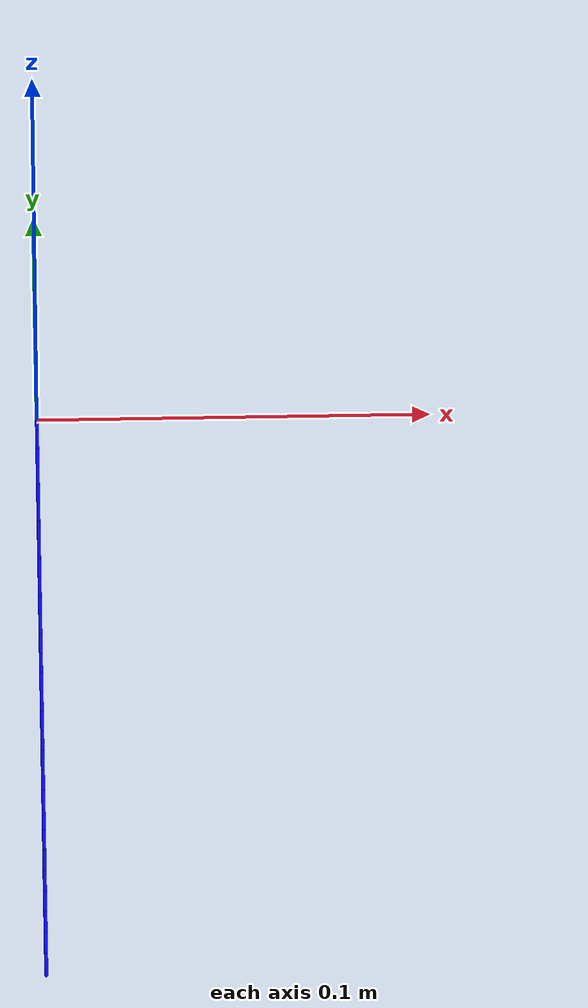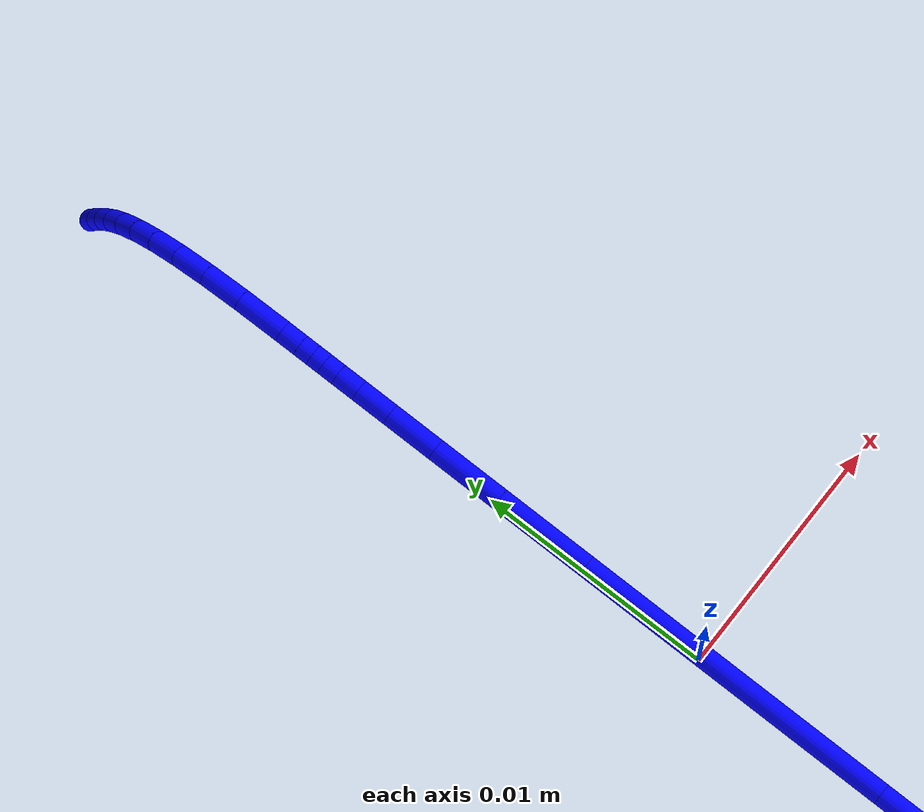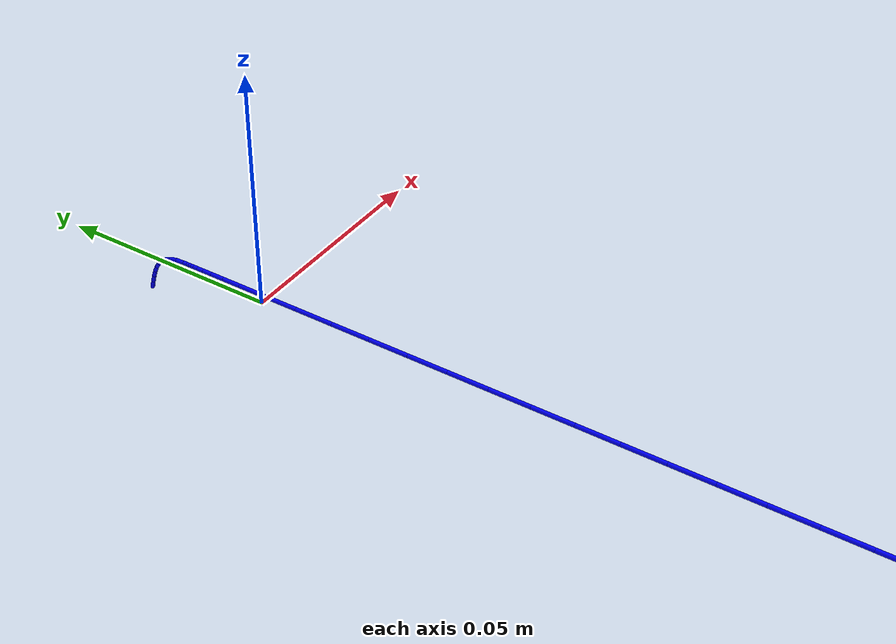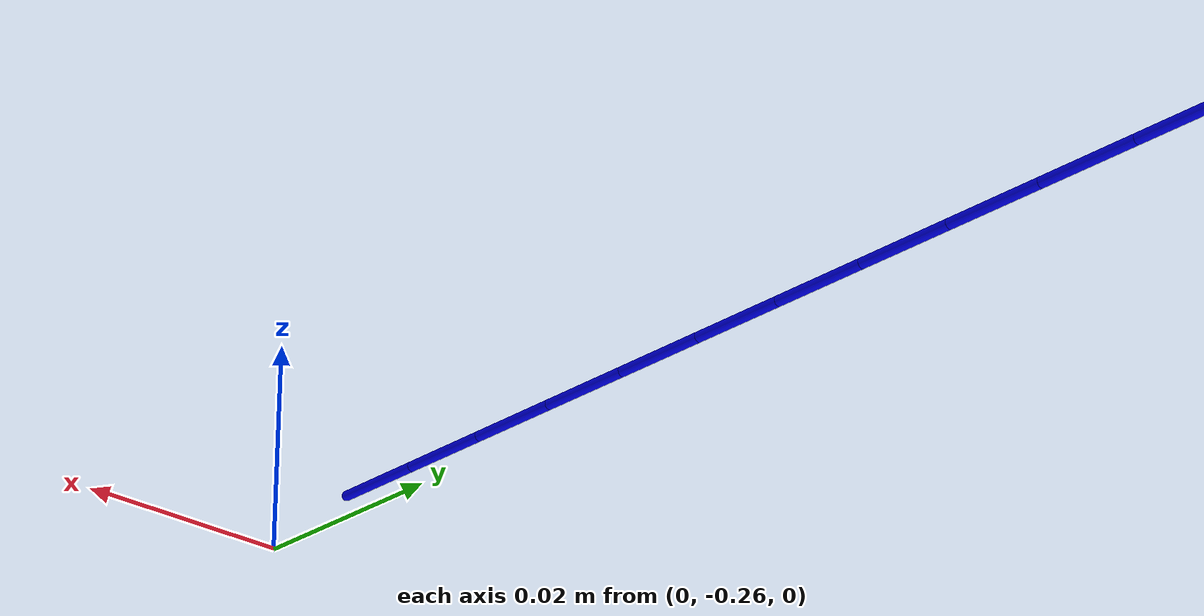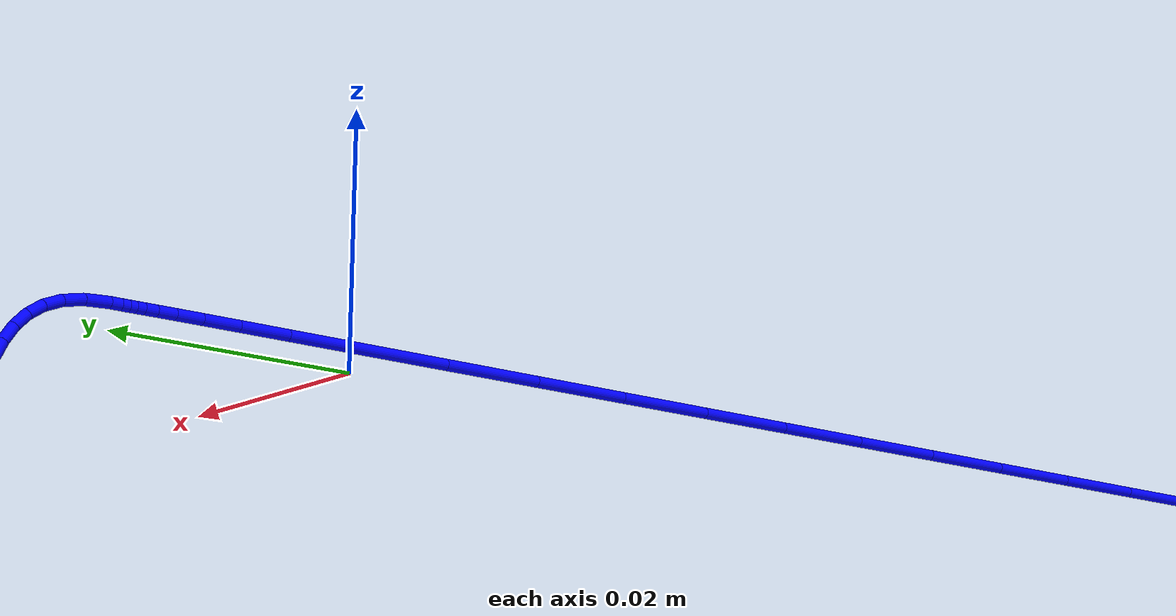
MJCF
<mujoco model="guidewire">
  <compiler angle="radian" />

  <visual>
    <global elevation="-30" />
  </visual>

  <default>
    <default class="guidewire">
      <geom condim="1" rgba="0.8 0.2 0.1 1" />
    </default>
    <default class="tips">
      <geom condim="1" rgba="0.8 0.2 0.1 1" />
    </default>
  </default>

  <extension>
    <plugin plugin="mujoco.pid">
      <instance name="slider-pid">
        <config key="kp" value="0.1"></config>
        <config key="ki" value="0.1"></config>
        <config key="kd" value="0.1"></config>
        <config key="imax" value="0.001"></config>
        <config key="slewmax" value="0.2"></config>
      </instance>
      <instance name="rotator-pid">
        <config key="kp" value="1"></config>
        <config key="ki" value="1"></config>
        <config key="kd" value="0.1"></config>
        <config key="imax" value="1"></config>
        <config key="slewmax" value="2"></config>
      </instance>
    </plugin>
    <plugin plugin="mujoco.elasticity.cable">
      <instance name="compositeguidewire">
        <config key="bend" value="1e9"></config>
        <config key="flat" value="true"></config>
        <config key="vmax" value="0.0004"></config>
      </instance>
      <instance name="compositetip">
        <config key="bend" value="5e7"></config>
        <config key="vmax" value="0.0004"></config>
      </instance>
    </plugin>
  </extension>

  <custom>
    <text name="composite_guidewire" data="rope_guidewire" />
    <text name="composite_tip" data="rope_tip" />
  </custom>

  <worldbody>
    <frame>
      <body name="guidewire" childclass="guidewire" pos="0 -0.25 0.002" quat="0.707107 0 0 0.707107">
        <joint name="slider" pos="0 0 0" axis="1 0 0" type="slide" limited="true" range="-0.1 0.1"
          damping="0.2" />
        <joint name="rotator" pos="0 0 0" axis="1 0 0" limited="false" range="100 100" damping="0.2" />
        <body name="guidewireB_first">
          <geom name="guidewireG0" size="0.000445 0.00431034" pos="0.00431034 0 0"
            quat="0.707107 0 -0.707107 0" type="capsule" condim="3" rgba="0 0 1 1" />
          <site name="guidewireS_first" pos="0 0 0" group="3" />
          <plugin instance="compositeguidewire" />
          <body name="guidewireB_1" pos="0.00862069 0 0">
            <joint name="guidewireJ_1" pos="0 0 0" type="ball" group="3" actuatorfrclimited="false"
              damping="0.001" />
            <geom name="guidewireG1" size="0.000445 0.00431034" pos="0.00431034 0 0"
              quat="0.707107 0 -0.707107 0" type="capsule" condim="3" rgba="0 0 1 1" />
            <plugin instance="compositeguidewire" />
            <body name="guidewireB_2" pos="0.00862069 0 0">
              <joint name="guidewireJ_2" pos="0 0 0" type="ball" group="3"
                actuatorfrclimited="false" damping="0.001" />
              <geom name="guidewireG2" size="0.000445 0.00431035" pos="0.00431035 0 0"
                quat="0.707107 0 -0.707107 0" type="capsule" condim="3" rgba="0 0 1 1" />
              <plugin instance="compositeguidewire" />
              <body name="guidewireB_3" pos="0.00862069 0 0">
                <joint name="guidewireJ_3" pos="0 0 0" type="ball" group="3"
                  actuatorfrclimited="false" damping="0.001" />
                <geom name="guidewireG3" size="0.000445 0.00431034" pos="0.00431034 0 0"
                  quat="0.707107 0 -0.707107 0" type="capsule" condim="3" rgba="0 0 1 1" />
                <plugin instance="compositeguidewire" />
                <body name="guidewireB_4" pos="0.00862069 0 0">
                  <joint name="guidewireJ_4" pos="0 0 0" type="ball" group="3"
                    actuatorfrclimited="false" damping="0.001" />
                  <geom name="guidewireG4" size="0.000445 0.00431035" pos="0.00431035 0 0"
                    quat="0.707107 0 -0.707107 0" type="capsule" condim="3" rgba="0 0 1 1" />
                  <plugin instance="compositeguidewire" />
                  <body name="guidewireB_5" pos="0.00862069 0 0">
                    <joint name="guidewireJ_5" pos="0 0 0" type="ball" group="3"
                      actuatorfrclimited="false" damping="0.001" />
                    <geom name="guidewireG5" size="0.000445 0.00431035" pos="0.00431035 0 0"
                      quat="0.707107 0 -0.707107 0" type="capsule" condim="3" rgba="0 0 1 1" />
                    <plugin instance="compositeguidewire" />
                    <body name="guidewireB_6" pos="0.00862069 0 0">
                      <joint name="guidewireJ_6" pos="0 0 0" type="ball" group="3"
                        actuatorfrclimited="false" damping="0.001" />
                      <geom name="guidewireG6" size="0.000445 0.00431034" pos="0.00431034 0 0"
                        quat="0.707107 0 -0.707107 0" type="capsule" condim="3" rgba="0 0 1 1" />
                      <plugin instance="compositeguidewire" />
                      <body name="guidewireB_7" pos="0.00862069 0 0">
                        <joint name="guidewireJ_7" pos="0 0 0" type="ball" group="3"
                          actuatorfrclimited="false" damping="0.001" />
                        <geom name="guidewireG7" size="0.000445 0.00431035" pos="0.00431035 0 0"
                          quat="0.707107 0 -0.707107 0" type="capsule" condim="3" rgba="0 0 1 1" />
                        <plugin instance="compositeguidewire" />
                        <body name="guidewireB_8" pos="0.00862069 0 0">
                          <joint name="guidewireJ_8" pos="0 0 0" type="ball" group="3"
                            actuatorfrclimited="false" damping="0.001" />
                          <geom name="guidewireG8" size="0.000445 0.00431034" pos="0.00431034 0 0"
                            quat="0.707107 0 -0.707107 0" type="capsule" condim="3" rgba="0 0 1 1" />
                          <plugin instance="compositeguidewire" />
                          <body name="guidewireB_9" pos="0.00862069 0 0">
                            <joint name="guidewireJ_9" pos="0 0 0" type="ball" group="3"
                              actuatorfrclimited="false" damping="0.001" />
                            <geom name="guidewireG9" size="0.000445 0.00431035" pos="0.00431035 0 0"
                              quat="0.707107 0 -0.707107 0" type="capsule" condim="3" rgba="0 0 1 1" />
                            <plugin instance="compositeguidewire" />
                            <body name="guidewireB_10" pos="0.00862069 0 0">
                              <joint name="guidewireJ_10" pos="0 0 0" type="ball" group="3"
                                actuatorfrclimited="false" damping="0.001" />
                              <geom name="guidewireG10" size="0.000445 0.00431034"
                                pos="0.00431034 0 0" quat="0.707107 0 -0.707107 0" type="capsule"
                                condim="3" rgba="0 0 1 1" />
                              <plugin instance="compositeguidewire" />
                              <body name="guidewireB_11" pos="0.00862069 0 0">
                                <joint name="guidewireJ_11" pos="0 0 0" type="ball" group="3"
                                  actuatorfrclimited="false" damping="0.001" />
                                <geom name="guidewireG11" size="0.000445 0.00431035"
                                  pos="0.00431035 0 0" quat="0.707107 0 -0.707107 0" type="capsule"
                                  condim="3" rgba="0 0 1 1" />
                                <plugin instance="compositeguidewire" />
                                <body name="guidewireB_12" pos="0.00862069 0 0">
                                  <joint name="guidewireJ_12" pos="0 0 0" type="ball" group="3"
                                    actuatorfrclimited="false" damping="0.001" />
                                  <geom name="guidewireG12" size="0.000445 0.00431034"
                                    pos="0.00431034 0 0" quat="0.707107 0 -0.707107 0"
                                    type="capsule" condim="3" rgba="0 0 1 1" />
                                  <plugin instance="compositeguidewire" />
                                  <body name="guidewireB_13" pos="0.00862069 0 0">
                                    <joint name="guidewireJ_13" pos="0 0 0" type="ball" group="3"
                                      actuatorfrclimited="false" damping="0.001" />
                                    <geom name="guidewireG13" size="0.000445 0.00431034"
                                      pos="0.00431034 0 0" quat="0.707107 0 -0.707107 0"
                                      type="capsule" condim="3" rgba="0 0 1 1" />
                                    <plugin instance="compositeguidewire" />
                                    <body name="guidewireB_14" pos="0.00862069 0 0">
                                      <joint name="guidewireJ_14" pos="0 0 0" type="ball" group="3"
                                        actuatorfrclimited="false" damping="0.001" />
                                      <geom name="guidewireG14" size="0.000445 0.00431034"
                                        pos="0.00431034 0 0" quat="0.707107 0 -0.707107 0"
                                        type="capsule" condim="3" rgba="0 0 1 1" />
                                      <plugin instance="compositeguidewire" />
                                      <body name="guidewireB_15" pos="0.00862069 0 0">
                                        <joint name="guidewireJ_15" pos="0 0 0" type="ball"
                                          group="3" actuatorfrclimited="false" damping="0.001" />
                                        <geom name="guidewireG15" size="0.000445 0.00431035"
                                          pos="0.00431035 0 0" quat="0.707107 0 -0.707107 0"
                                          type="capsule" condim="3" rgba="0 0 1 1" />
                                        <plugin instance="compositeguidewire" />
                                        <body name="guidewireB_16" pos="0.00862069 0 0">
                                          <joint name="guidewireJ_16" pos="0 0 0" type="ball"
                                            group="3" actuatorfrclimited="false" damping="0.001" />
                                          <geom name="guidewireG16" size="0.000445 0.00431035"
                                            pos="0.00431035 0 0" quat="0.707107 0 -0.707107 0"
                                            type="capsule" condim="3" rgba="0 0 1 1" />
                                          <plugin instance="compositeguidewire" />
                                          <body name="guidewireB_17" pos="0.00862069 0 0">
                                            <joint name="guidewireJ_17" pos="0 0 0" type="ball"
                                              group="3" actuatorfrclimited="false" damping="0.001" />
                                            <geom name="guidewireG17" size="0.000445 0.00431034"
                                              pos="0.00431034 0 0" quat="0.707107 0 -0.707107 0"
                                              type="capsule" condim="3" rgba="0 0 1 1" />
                                            <plugin instance="compositeguidewire" />
                                            <body name="guidewireB_18" pos="0.00862068 0 0">
                                              <joint name="guidewireJ_18" pos="0 0 0" type="ball"
                                                group="3" actuatorfrclimited="false" damping="0.001" />
                                              <geom name="guidewireG18" size="0.000445 0.00431035"
                                                pos="0.00431035 0 0" quat="0.707107 0 -0.707107 0"
                                                type="capsule" condim="3" rgba="0 0 1 1" />
                                              <plugin instance="compositeguidewire" />
                                              <body name="guidewireB_19" pos="0.00862069 0 0">
                                                <joint name="guidewireJ_19" pos="0 0 0" type="ball"
                                                  group="3" actuatorfrclimited="false"
                                                  damping="0.001" />
                                                <geom name="guidewireG19" size="0.000445 0.00431035"
                                                  pos="0.00431035 0 0" quat="0.707107 0 -0.707107 0"
                                                  type="capsule" condim="3" rgba="0 0 1 1" />
                                                <plugin instance="compositeguidewire" />
                                                <body name="guidewireB_20" pos="0.00862069 0 0">
                                                  <joint name="guidewireJ_20" pos="0 0 0"
                                                    type="ball" group="3" actuatorfrclimited="false"
                                                    damping="0.001" />
                                                  <geom name="guidewireG20"
                                                    size="0.000445 0.00431034" pos="0.00431034 0 0"
                                                    quat="0.707107 0 -0.707107 0" type="capsule"
                                                    condim="3" rgba="0 0 1 1" />
                                                  <plugin instance="compositeguidewire" />
                                                  <body name="guidewireB_21" pos="0.00862068 0 0">
                                                    <joint name="guidewireJ_21" pos="0 0 0"
                                                      type="ball" group="3"
                                                      actuatorfrclimited="false" damping="0.001" />
                                                    <geom name="guidewireG21"
                                                      size="0.000445 0.00431035"
                                                      pos="0.00431035 0 0"
                                                      quat="0.707107 0 -0.707107 0" type="capsule"
                                                      condim="3" rgba="0 0 1 1" />
                                                    <plugin instance="compositeguidewire" />
                                                    <body name="guidewireB_22" pos="0.00862069 0 0">
                                                      <joint name="guidewireJ_22" pos="0 0 0"
                                                        type="ball" group="3"
                                                        actuatorfrclimited="false" damping="0.001" />
                                                      <geom name="guidewireG22"
                                                        size="0.000445 0.00431035"
                                                        pos="0.00431035 0 0"
                                                        quat="0.707107 0 -0.707107 0" type="capsule"
                                                        condim="3" rgba="0 0 1 1" />
                                                      <plugin instance="compositeguidewire" />
                                                      <body name="guidewireB_23"
                                                        pos="0.00862069 0 0">
                                                        <joint name="guidewireJ_23" pos="0 0 0"
                                                          type="ball" group="3"
                                                          actuatorfrclimited="false" damping="0.001" />
                                                        <geom name="guidewireG23"
                                                          size="0.000445 0.00431035"
                                                          pos="0.00431035 0 0"
                                                          quat="0.707107 0 -0.707107 0"
                                                          type="capsule" condim="3" rgba="0 0 1 1" />
                                                        <plugin instance="compositeguidewire" />
                                                        <body name="guidewireB_24"
                                                          pos="0.00862069 0 0">
                                                          <joint name="guidewireJ_24" pos="0 0 0"
                                                            type="ball" group="3"
                                                            actuatorfrclimited="false"
                                                            damping="0.001" />
                                                          <geom name="guidewireG24"
                                                            size="0.000445 0.00431034"
                                                            pos="0.00431034 0 0"
                                                            quat="0.707107 0 -0.707107 0"
                                                            type="capsule" condim="3" rgba="0 0 1 1" />
                                                          <plugin instance="compositeguidewire" />
                                                          <body name="guidewireB_25"
                                                            pos="0.00862068 0 0">
                                                            <joint name="guidewireJ_25" pos="0 0 0"
                                                              type="ball" group="3"
                                                              actuatorfrclimited="false"
                                                              damping="0.001" />
                                                            <geom name="guidewireG25"
                                                              size="0.000445 0.00431035"
                                                              pos="0.00431035 0 0"
                                                              quat="0.707107 0 -0.707107 0"
                                                              type="capsule" condim="3"
                                                              rgba="0 0 1 1" />
                                                            <plugin instance="compositeguidewire" />
                                                            <body name="guidewireB_26"
                                                              pos="0.00862069 0 0">
                                                              <joint name="guidewireJ_26"
                                                                pos="0 0 0" type="ball" group="3"
                                                                actuatorfrclimited="false"
                                                                damping="0.001" />
                                                              <geom name="guidewireG26"
                                                                size="0.000445 0.00431035"
                                                                pos="0.00431035 0 0"
                                                                quat="0.707107 0 -0.707107 0"
                                                                type="capsule" condim="3"
                                                                rgba="0 0 1 1" />
                                                              <plugin instance="compositeguidewire" />
                                                              <body name="guidewireB_27"
                                                                pos="0.00862069 0 0">
                                                                <joint name="guidewireJ_27"
                                                                  pos="0 0 0" type="ball" group="3"
                                                                  actuatorfrclimited="false"
                                                                  damping="0.001" />
                                                                <geom name="guidewireG27"
                                                                  size="0.000445 0.00431034"
                                                                  pos="0.00431034 0 0"
                                                                  quat="0.707107 0 -0.707107 0"
                                                                  type="capsule" condim="3"
                                                                  rgba="0 0 1 1" />
                                                                <plugin
                                                                  instance="compositeguidewire" />
                                                                <body name="guidewireB_last"
                                                                  pos="0.00862068 0 0">
                                                                  <joint name="guidewireJ_last"
                                                                    pos="0 0 0" type="ball"
                                                                    group="3"
                                                                    actuatorfrclimited="false"
                                                                    damping="0.001" />
                                                                  <geom name="guidewireG28"
                                                                    size="0.000445 0.00431035"
                                                                    pos="0.00431035 0 0"
                                                                    quat="0.707107 0 -0.707107 0"
                                                                    type="capsule" condim="3"
                                                                    rgba="0 0 1 1" />
                                                                  <site name="guidewireS_last"
                                                                    pos="0.00862069 0 0" group="3" />
                                                                  <plugin
                                                                    instance="compositeguidewire" />
                                                                  <body name="tip" childclass="tips"
                                                                    pos="0.00862069 0 0">
                                                                    <body name="tipB_first"
                                                                      quat="-0.707107 0.707107 0 0">
                                                                      <geom name="tipG0"
                                                                        size="0.000445 0.002704"
                                                                        pos="0.002704 0 0"
                                                                        quat="0.707107 0 -0.707107 0"
                                                                        type="capsule" condim="3"
                                                                        rgba="0 0 1 1" />
                                                                      <site name="tipS_first"
                                                                        pos="0 0 0" group="3" />
                                                                      <plugin
                                                                        instance="compositetip" />
                                                                      <body name="tipB_1"
                                                                        pos="0.00540801 0 0"
                                                                        quat="1 0 0 0.000229109">
                                                                        <joint name="tipJ_1"
                                                                          pos="0 0 0" type="ball"
                                                                          group="3"
                                                                          actuatorfrclimited="false"
                                                                          damping="0.001" />
                                                                        <geom name="tipG1"
                                                                          size="0.000445 0.002073"
                                                                          pos="0.002073 0 0"
                                                                          quat="0.707107 0 -0.707107 0"
                                                                          type="capsule" condim="3"
                                                                          rgba="0 0 1 1" />
                                                                        <plugin
                                                                          instance="compositetip" />
                                                                        <body name="tipB_2"
                                                                          pos="0.004146 0 0"
                                                                          quat="1 0 0 0.000440283">
                                                                          <joint name="tipJ_2"
                                                                            pos="0 0 0" type="ball"
                                                                            group="3"
                                                                            actuatorfrclimited="false"
                                                                            damping="0.001" />
                                                                          <geom name="tipG2"
                                                                            size="0.000445 0.0015365"
                                                                            pos="0.0015365 0 0"
                                                                            quat="0.707107 0 -0.707107 0"
                                                                            type="capsule"
                                                                            condim="3"
                                                                            rgba="0 0 1 1" />
                                                                          <plugin
                                                                            instance="compositetip" />
                                                                          <body name="tipB_3"
                                                                            pos="0.003073 0 0"
                                                                            quat="1 0 0 0.000619746">
                                                                            <joint name="tipJ_3"
                                                                              pos="0 0 0"
                                                                              type="ball" group="3"
                                                                              actuatorfrclimited="false"
                                                                              damping="0.001" />
                                                                            <geom name="tipG3"
                                                                              size="0.000445 0.001094"
                                                                              pos="0.001094 0 0"
                                                                              quat="0.707107 0 -0.707107 0"
                                                                              type="capsule"
                                                                              condim="3"
                                                                              rgba="0 0 1 1" />
                                                                            <plugin
                                                                              instance="compositetip" />
                                                                            <body name="tipB_4"
                                                                              pos="0.002188 0 0"
                                                                              quat="1 0 0 0.000546304">
                                                                              <joint name="tipJ_4"
                                                                                pos="0 0 0"
                                                                                type="ball"
                                                                                group="3"
                                                                                actuatorfrclimited="false"
                                                                                damping="0.001" />
                                                                              <geom name="tipG4"
                                                                                size="0.000445 0.000747502"
                                                                                pos="0.000747502 0 0"
                                                                                quat="0.707107 0 -0.707107 0"
                                                                                type="capsule"
                                                                                condim="3"
                                                                                rgba="0 0 1 1" />
                                                                              <plugin
                                                                                instance="compositetip" />
                                                                              <body name="tipB_5"
                                                                                pos="0.001495 0 0"
                                                                                quat="0.999999 0 0 0.00152189">
                                                                                <joint name="tipJ_5"
                                                                                  pos="0 0 0"
                                                                                  type="ball"
                                                                                  group="3"
                                                                                  actuatorfrclimited="false"
                                                                                  damping="0.001" />
                                                                                <geom name="tipG5"
                                                                                  size="0.000445 0.000495006"
                                                                                  pos="0.000495006 0 0"
                                                                                  quat="0.707107 0 -0.707107 0"
                                                                                  type="capsule"
                                                                                  condim="3"
                                                                                  rgba="0 0 1 1" />
                                                                                <plugin
                                                                                  instance="compositetip" />
                                                                                <body name="tipB_6"
                                                                                  pos="0.000990012 0 0"
                                                                                  quat="1 0 0 0.000442092">
                                                                                  <joint
                                                                                    name="tipJ_6"
                                                                                    pos="0 0 0"
                                                                                    type="ball"
                                                                                    group="3"
                                                                                    actuatorfrclimited="false"
                                                                                    damping="0.001" />
                                                                                  <geom name="tipG6"
                                                                                    size="0.000445 0.000337006"
                                                                                    pos="0.000337006 0 0"
                                                                                    quat="0.707107 0 -0.707107 0"
                                                                                    type="capsule"
                                                                                    condim="3"
                                                                                    rgba="0 0 1 1" />
                                                                                  <plugin
                                                                                    instance="compositetip" />
                                                                                  <body
                                                                                    name="tipB_7"
                                                                                    pos="0.000674012 0 0"
                                                                                    quat="1 0 0 -0.00023511">
                                                                                    <joint
                                                                                      name="tipJ_7"
                                                                                      pos="0 0 0"
                                                                                      type="ball"
                                                                                      group="3"
                                                                                      actuatorfrclimited="false"
                                                                                      damping="0.001" />
                                                                                    <geom
                                                                                      name="tipG7"
                                                                                      size="0.000445 0.000274504"
                                                                                      pos="0.000274504 0 0"
                                                                                      quat="0.707107 0 -0.707107 0"
                                                                                      type="capsule"
                                                                                      condim="3"
                                                                                      rgba="0 0 1 1" />
                                                                                    <plugin
                                                                                      instance="compositetip" />
                                                                                    <body
                                                                                      name="tipB_8"
                                                                                      pos="0.000549008 0 0"
                                                                                      quat="0.999996 0 0 -0.00273221">
                                                                                      <joint
                                                                                        name="tipJ_8"
                                                                                        pos="0 0 0"
                                                                                        type="ball"
                                                                                        group="3"
                                                                                        actuatorfrclimited="false"
                                                                                        damping="0.001" />
                                                                                      <geom
                                                                                        name="tipG8"
                                                                                        size="0.000445 0.000306"
                                                                                        pos="0.000306 0 0"
                                                                                        quat="0.707107 0 -0.707107 0"
                                                                                        type="capsule"
                                                                                        condim="3"
                                                                                        rgba="0 0 1 1" />
                                                                                      <plugin
                                                                                        instance="compositetip" />
                                                                                      <body
                                                                                        name="tipB_9"
                                                                                        pos="0.000612 0 0"
                                                                                        quat="0.999999 0 0 -0.00115607">
                                                                                        <joint
                                                                                          name="tipJ_9"
                                                                                          pos="0 0 0"
                                                                                          type="ball"
                                                                                          group="3"
                                                                                          actuatorfrclimited="false"
                                                                                          damping="0.001" />
                                                                                        <geom
                                                                                          name="tipG9"
                                                                                          size="0.000445 0.000432501"
                                                                                          pos="0.000432501 0 0"
                                                                                          quat="0.707107 0 -0.707107 0"
                                                                                          type="capsule"
                                                                                          condim="3"
                                                                                          rgba="0 0 1 1" />
                                                                                        <plugin
                                                                                          instance="compositetip" />
                                                                                        <body
                                                                                          name="tipB_10"
                                                                                          pos="0.000865002 0 0"
                                                                                          quat="0.999544 0 0 0.0301886">
                                                                                          <joint
                                                                                            name="tipJ_10"
                                                                                            pos="0 0 0"
                                                                                            type="ball"
                                                                                            group="3"
                                                                                            actuatorfrclimited="false"
                                                                                            damping="0.001" />
                                                                                          <geom
                                                                                            name="tipG10"
                                                                                            size="0.000445 0.00099067"
                                                                                            pos="0.00099067 0 0"
                                                                                            quat="0.707107 0 -0.707107 0"
                                                                                            type="capsule"
                                                                                            condim="3"
                                                                                            rgba="0 0 1 1" />
                                                                                          <plugin
                                                                                            instance="compositetip" />
                                                                                          <body
                                                                                            name="tipB_11"
                                                                                            pos="0.00198134 0 0"
                                                                                            quat="0.997196 0 0 0.0748379">
                                                                                            <joint
                                                                                              name="tipJ_11"
                                                                                              pos="0 0 0"
                                                                                              type="ball"
                                                                                              group="3"
                                                                                              actuatorfrclimited="false"
                                                                                              damping="0.001" />
                                                                                            <geom
                                                                                              name="tipG11"
                                                                                              size="0.000445 0.000850308"
                                                                                              pos="0.000850308 0 0"
                                                                                              quat="0.707107 0 -0.707107 0"
                                                                                              type="capsule"
                                                                                              condim="3"
                                                                                              rgba="0 0 1 1" />
                                                                                            <plugin
                                                                                              instance="compositetip" />
                                                                                            <body
                                                                                              name="tipB_12"
                                                                                              pos="0.00170062 0 0"
                                                                                              quat="0.995725 0 0 0.0923696">
                                                                                              <joint
                                                                                                name="tipJ_12"
                                                                                                pos="0 0 0"
                                                                                                type="ball"
                                                                                                group="3"
                                                                                                actuatorfrclimited="false"
                                                                                                damping="0.001" />
                                                                                              <geom
                                                                                                name="tipG12"
                                                                                                size="0.000445 0.000749617"
                                                                                                pos="0.000749617 0 0"
                                                                                                quat="0.707107 0 -0.707107 0"
                                                                                                type="capsule"
                                                                                                condim="3"
                                                                                                rgba="0 0 1 1" />
                                                                                              <plugin
                                                                                                instance="compositetip" />
                                                                                              <body
                                                                                                name="tipB_13"
                                                                                                pos="0.00149923 0 0"
                                                                                                quat="0.994725 0 0 0.102582">
                                                                                                <joint
                                                                                                  name="tipJ_13"
                                                                                                  pos="0 0 0"
                                                                                                  type="ball"
                                                                                                  group="3"
                                                                                                  actuatorfrclimited="false"
                                                                                                  damping="0.001" />
                                                                                                <geom
                                                                                                  name="tipG13"
                                                                                                  size="0.000445 0.000692304"
                                                                                                  pos="0.000692304 0 0"
                                                                                                  quat="0.707107 0 -0.707107 0"
                                                                                                  type="capsule"
                                                                                                  condim="3"
                                                                                                  rgba="0 0 1 1" />
                                                                                                <plugin
                                                                                                  instance="compositetip" />
                                                                                                <body
                                                                                                  name="tipB_14"
                                                                                                  pos="0.00138461 0 0"
                                                                                                  quat="0.994763 0 0 0.102211">
                                                                                                  <joint
                                                                                                    name="tipJ_14"
                                                                                                    pos="0 0 0"
                                                                                                    type="ball"
                                                                                                    group="3"
                                                                                                    actuatorfrclimited="false"
                                                                                                    damping="0.001" />
                                                                                                  <geom
                                                                                                    name="tipG14"
                                                                                                    size="0.000445 0.000675394"
                                                                                                    pos="0.000675394 0 0"
                                                                                                    quat="0.707107 0 -0.707107 0"
                                                                                                    type="capsule"
                                                                                                    condim="3"
                                                                                                    rgba="0 0 1 1" />
                                                                                                  <plugin
                                                                                                    instance="compositetip" />
                                                                                                  <body
                                                                                                    name="tipB_15"
                                                                                                    pos="0.00135079 0 0"
                                                                                                    quat="0.996096 0 0 0.088279">
                                                                                                    <joint
                                                                                                      name="tipJ_15"
                                                                                                      pos="0 0 0"
                                                                                                      type="ball"
                                                                                                      group="3"
                                                                                                      actuatorfrclimited="false"
                                                                                                      damping="0.001" />
                                                                                                    <geom
                                                                                                      name="tipG15"
                                                                                                      size="0.000445 0.000691159"
                                                                                                      pos="0.000691159 0 0"
                                                                                                      quat="0.707107 0 -0.707107 0"
                                                                                                      type="capsule"
                                                                                                      condim="3"
                                                                                                      rgba="0 0 1 1" />
                                                                                                    <plugin
                                                                                                      instance="compositetip" />
                                                                                                    <body
                                                                                                      name="tipB_16"
                                                                                                      pos="0.00138232 0 0"
                                                                                                      quat="0.997624 0 0 0.0688947">
                                                                                                      <joint
                                                                                                        name="tipJ_16"
                                                                                                        pos="0 0 0"
                                                                                                        type="ball"
                                                                                                        group="3"
                                                                                                        actuatorfrclimited="false"
                                                                                                        damping="0.001" />
                                                                                                      <geom
                                                                                                        name="tipG16"
                                                                                                        size="0.000445 0.000729"
                                                                                                        pos="0.000729 0 0"
                                                                                                        quat="0.707107 0 -0.707107 0"
                                                                                                        type="capsule"
                                                                                                        condim="3"
                                                                                                        rgba="0 0 1 1" />
                                                                                                      <plugin
                                                                                                        instance="compositetip" />
                                                                                                      <body
                                                                                                        name="tipB_17"
                                                                                                        pos="0.001458 0 0"
                                                                                                        quat="0.99882 0 0 0.0485588">
                                                                                                        <joint
                                                                                                          name="tipJ_17"
                                                                                                          pos="0 0 0"
                                                                                                          type="ball"
                                                                                                          group="3"
                                                                                                          actuatorfrclimited="false"
                                                                                                          damping="0.001" />
                                                                                                        <geom
                                                                                                          name="tipG17"
                                                                                                          size="0.000445 0.00077663"
                                                                                                          pos="0.00077663 0 0"
                                                                                                          quat="0.707107 0 -0.707107 0"
                                                                                                          type="capsule"
                                                                                                          condim="3"
                                                                                                          rgba="0 0 1 1" />
                                                                                                        <plugin
                                                                                                          instance="compositetip" />
                                                                                                        <body
                                                                                                          name="tipB_18"
                                                                                                          pos="0.00155326 0 0"
                                                                                                          quat="0.999543 0 0 0.0302407">
                                                                                                          <joint
                                                                                                            name="tipJ_18"
                                                                                                            pos="0 0 0"
                                                                                                            type="ball"
                                                                                                            group="3"
                                                                                                            actuatorfrclimited="false"
                                                                                                            damping="0.001" />
                                                                                                          <geom
                                                                                                            name="tipG18"
                                                                                                            size="0.000445 0.000829914"
                                                                                                            pos="0.000829914 0 0"
                                                                                                            quat="0.707107 0 -0.707107 0"
                                                                                                            type="capsule"
                                                                                                            condim="3"
                                                                                                            rgba="0 0 1 1" />
                                                                                                          <plugin
                                                                                                            instance="compositetip" />
                                                                                                          <body
                                                                                                            name="tipB_last"
                                                                                                            pos="0.00165983 0 0"
                                                                                                            quat="0.99987 0 0 0.0161458">
                                                                                                            <joint
                                                                                                              name="tipJ_last"
                                                                                                              pos="0 0 0"
                                                                                                              type="ball"
                                                                                                              group="3"
                                                                                                              actuatorfrclimited="false"
                                                                                                              damping="0.001" />
                                                                                                            <geom
                                                                                                              name="tipG19"
                                                                                                              size="0.000445 0.000882851"
                                                                                                              pos="0.000882851 0 0"
                                                                                                              quat="0.707107 0 -0.707107 0"
                                                                                                              type="capsule"
                                                                                                              condim="3"
                                                                                                              rgba="0 0 1 1" />
                                                                                                            <site
                                                                                                              name="tipS_last"
                                                                                                              pos="0.0017657 0 0"
                                                                                                              group="3" />
                                                                                                            <plugin
                                                                                                              instance="compositetip" />
                                                                                                          </body>
                                                                                                        </body>
                                                                                                      </body>
                                                                                                    </body>
                                                                                                  </body>
                                                                                                </body>
                                                                                              </body>
                                                                                            </body>
                                                                                          </body>
                                                                                        </body>
                                                                                      </body>
                                                                                    </body>
                                                                                  </body>
                                                                                </body>
                                                                              </body>
                                                                            </body>
                                                                          </body>
                                                                        </body>
                                                                      </body>
                                                                    </body>
                                                                  </body>
                                                                </body>
                                                              </body>
                                                            </body>
                                                          </body>
                                                        </body>
                                                      </body>
                                                    </body>
                                                  </body>
                                                </body>
                                              </body>
                                            </body>
                                          </body>
                                        </body>
                                      </body>
                                    </body>
                                  </body>
                                </body>
                              </body>
                            </body>
                          </body>
                        </body>
                      </body>
                    </body>
                  </body>
                </body>
              </body>
            </body>
          </body>
        </body>
      </body>
    </frame>
    <frame>

    </frame>
  </worldbody>

  <contact>
    <exclude body1="guidewireB_first" body2="guidewireB_1" />
    <exclude body1="guidewireB_1" body2="guidewireB_2" />
    <exclude body1="guidewireB_2" body2="guidewireB_3" />
    <exclude body1="guidewireB_3" body2="guidewireB_4" />
    <exclude body1="guidewireB_4" body2="guidewireB_5" />
    <exclude body1="guidewireB_5" body2="guidewireB_6" />
    <exclude body1="guidewireB_6" body2="guidewireB_7" />
    <exclude body1="guidewireB_7" body2="guidewireB_8" />
    <exclude body1="guidewireB_8" body2="guidewireB_9" />
    <exclude body1="guidewireB_9" body2="guidewireB_10" />
    <exclude body1="guidewireB_10" body2="guidewireB_11" />
    <exclude body1="guidewireB_11" body2="guidewireB_12" />
    <exclude body1="guidewireB_12" body2="guidewireB_13" />
    <exclude body1="guidewireB_13" body2="guidewireB_14" />
    <exclude body1="guidewireB_14" body2="guidewireB_15" />
    <exclude body1="guidewireB_15" body2="guidewireB_16" />
    <exclude body1="guidewireB_16" body2="guidewireB_17" />
    <exclude body1="guidewireB_17" body2="guidewireB_18" />
    <exclude body1="guidewireB_18" body2="guidewireB_19" />
    <exclude body1="guidewireB_19" body2="guidewireB_20" />
    <exclude body1="guidewireB_20" body2="guidewireB_21" />
    <exclude body1="guidewireB_21" body2="guidewireB_22" />
    <exclude body1="guidewireB_22" body2="guidewireB_23" />
    <exclude body1="guidewireB_23" body2="guidewireB_24" />
    <exclude body1="guidewireB_24" body2="guidewireB_25" />
    <exclude body1="guidewireB_25" body2="guidewireB_26" />
    <exclude body1="guidewireB_26" body2="guidewireB_27" />
    <exclude body1="guidewireB_27" body2="guidewireB_last" />
    <exclude body1="guidewireB_last" body2="guidewireB_first" />
    <exclude body1="tipB_first" body2="tipB_1" />
    <exclude body1="tipB_1" body2="tipB_2" />
    <exclude body1="tipB_2" body2="tipB_3" />
    <exclude body1="tipB_3" body2="tipB_4" />
    <exclude body1="tipB_4" body2="tipB_5" />
    <exclude body1="tipB_5" body2="tipB_6" />
    <exclude body1="tipB_6" body2="tipB_7" />
    <exclude body1="tipB_7" body2="tipB_8" />
    <exclude body1="tipB_8" body2="tipB_9" />
    <exclude body1="tipB_9" body2="tipB_10" />
    <exclude body1="tipB_10" body2="tipB_11" />
    <exclude body1="tipB_11" body2="tipB_12" />
    <exclude body1="tipB_12" body2="tipB_13" />
    <exclude body1="tipB_13" body2="tipB_14" />
    <exclude body1="tipB_14" body2="tipB_15" />
    <exclude body1="tipB_15" body2="tipB_16" />
    <exclude body1="tipB_16" body2="tipB_17" />
    <exclude body1="tipB_17" body2="tipB_18" />
    <exclude body1="tipB_18" body2="tipB_last" />
  </contact>

  <actuator>
    <plugin name="slider" actdim="2" ctrlrange="0 0.5" instance="slider-pid" joint="slider"></plugin>
    <plugin name="rotator" actdim="2" ctrlrange="-12.56 12.56" instance="rotator-pid"
      joint="rotator"></plugin>
  </actuator>
</mujoco>
